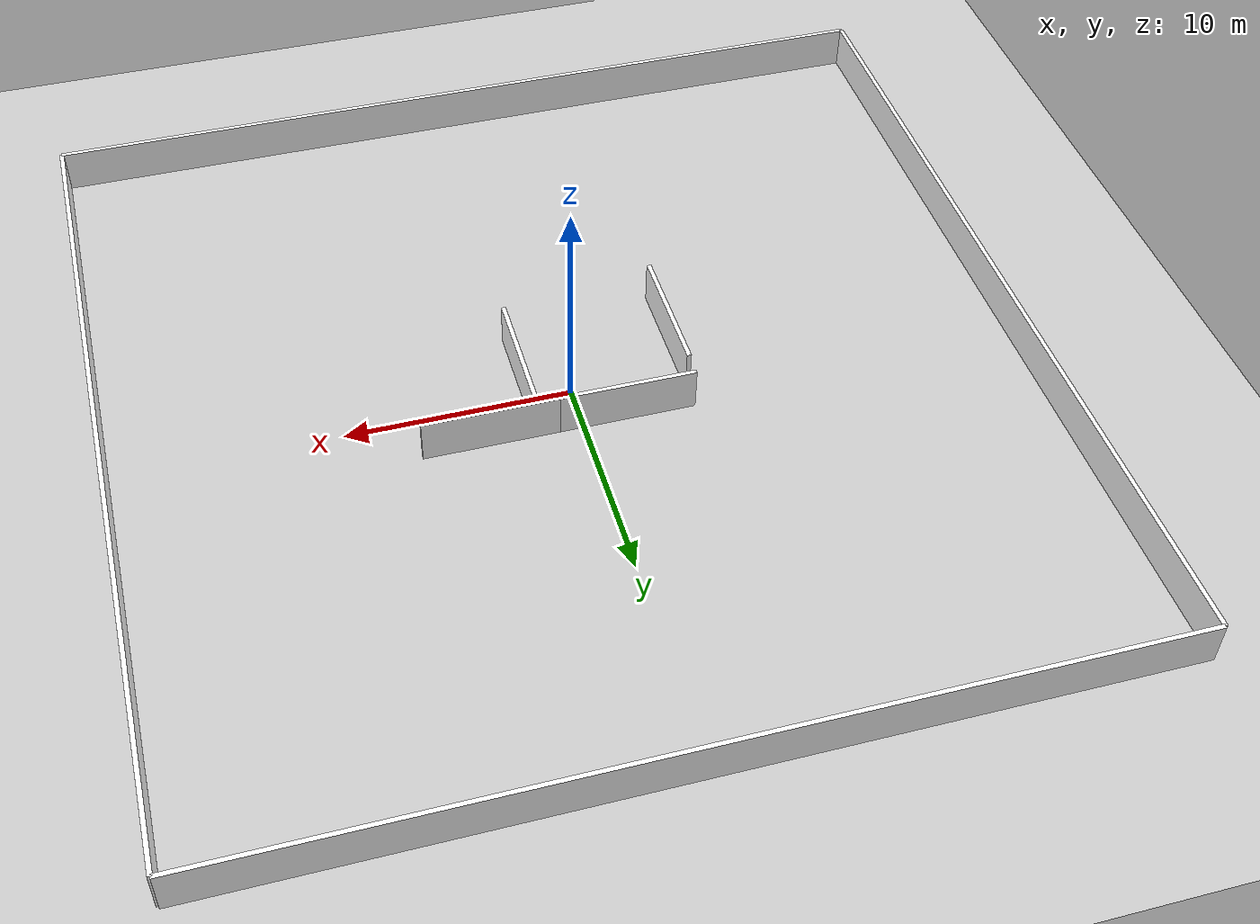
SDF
<?xml version="1.0" ?>
<sdf version="1.8">
  <world name="demo">
    <plugin filename="gz-sim-physics-system" name="gz::sim::systems::Physics"></plugin>
    <plugin filename="gz-sim-user-commands-system" name="gz::sim::systems::UserCommands"></plugin>
    <plugin filename="gz-sim-scene-broadcaster-system" name="gz::sim::systems::SceneBroadcaster"></plugin>
    <plugin filename="gz-sim-sensors-system" name="gz::sim::systems::Sensors">
      <render_engine>ogre2</render_engine>
    </plugin>
    <physics name="1ms" type="ignored">
      <max_step_size>0.001</max_step_size>
      <real_time_factor>1.0</real_time_factor>
    </physics>

    <light type="directional" name="sun">
      <cast_shadows>true</cast_shadows>
      <pose>0 0 10 0 0 0</pose>
      <diffuse>0.8 0.8 0.8 1</diffuse>
      <specular>0.2 0.2 0.2 1</specular>
      <direction>-0.5 0.1 -0.9</direction>
    </light>

    <model name="ground_plane">
      <static>true</static>
      <link name="link">
        <collision name="collision">
          <geometry><plane><normal>0 0 1</normal><size>100 100</size></plane></geometry>
        </collision>
        <visual name="visual">
          <geometry><plane><normal>0 0 1</normal><size>100 100</size></plane></geometry>
          <material>
            <ambient>0.8 0.8 0.8 1</ambient>
            <diffuse>0.8 0.8 0.8 1</diffuse>
          </material>
        </visual>
      </link>
    </model>
    <model name="wall_top">
      <static>true</static>
      <pose>0 20 1 0 0 0</pose>
      <link name="link">
        <collision name="col">
          <geometry><box><size>40 0.2 2</size></box></geometry>
        </collision>
        <visual name="vis">
          <geometry><box><size>40 0.2 2</size></box></geometry>
          <material>
            <ambient>1 1 1 1</ambient>
            <diffuse>1 1 1 1</diffuse>
          </material>
        </visual>
      </link>
    </model>

    <model name="wall_bottom">
      <static>true</static>
      <pose>0 -20 1 0 0 0</pose>
      <link name="link">
        <collision name="col">
          <geometry><box><size>40 0.2 2</size></box></geometry>
        </collision>
        <visual name="vis">
          <geometry><box><size>40 0.2 2</size></box></geometry>
          <material>
            <ambient>1 1 1 1</ambient>
            <diffuse>1 1 1 1</diffuse>
          </material>
        </visual>
      </link>
    </model>

    <model name="wall_left">
      <static>true</static>
      <pose>-20 0 1 0 0 0</pose>
      <link name="link">
        <collision name="col">
          <geometry><box><size>0.2 40 2</size></box></geometry>
        </collision>
        <visual name="vis">
          <geometry><box><size>0.2 40 2</size></box></geometry>
          <material>
            <ambient>1 1 1 1</ambient>
            <diffuse>1 1 1 1</diffuse>
          </material>
        </visual>
      </link>
    </model>

    <model name="wall_right">
      <static>true</static>
      <pose>20 0 1 0 0 0</pose>
      <link name="link">
        <collision name="col">
          <geometry><box><size>0.2 40 2</size></box></geometry>
        </collision>
        <visual name="vis">
          <geometry><box><size>0.2 40 2</size></box></geometry>
          <material>
            <ambient>1 1 1 1</ambient>
            <diffuse>1 1 1 1</diffuse>
          </material>
        </visual>
      </link>
    </model>

    <model name="maze_wall_1">
      <static>true</static>
      <pose>-2 2 1 0 0 0</pose>
      <link name="link">
        <collision name="col"><geometry><box><size>6 0.2 2</size></box></geometry></collision>
        <visual name="vis">
          <geometry><box><size>6 0.2 2</size></box></geometry>
          <material><ambient>1 1 1 1</ambient><diffuse>1 1 1 1</diffuse></material>
        </visual>
      </link>
    </model>

    <model name="maze_wall_2">
      <static>true</static>
      <pose>2 -1 1 0 0 0</pose>
      <link name="link">
        <collision name="col"><geometry><box><size>0.2 6 2</size></box></geometry></collision>
        <visual name="vis">
          <geometry><box><size>0.2 6 2</size></box></geometry>
          <material><ambient>1 1 1 1</ambient><diffuse>1 1 1 1</diffuse></material>
        </visual>
      </link>
    </model>

    <model name="maze_wall_3">
      <static>true</static>
      <pose>-5 -2 1 0 0 0</pose>
      <link name="link">
        <collision name="col"><geometry><box><size>0.2 6 2</size></box></geometry></collision>
        <visual name="vis">
          <geometry><box><size>0.2 6 2</size></box></geometry>
          <material><ambient>1 1 1 1</ambient><diffuse>1 1 1 1</diffuse></material>
        </visual>
      </link>
    </model>

    <model name="maze_wall_4">
      <static>true</static>
      <pose>4 2 1 0 0 0</pose>
      <link name="link">
        <collision name="col"><geometry><box><size>6 0.2 2</size></box></geometry></collision>
        <visual name="vis">
          <geometry><box><size>6 0.2 2</size></box></geometry>
          <material><ambient>1 1 1 1</ambient><diffuse>1 1 1 1</diffuse></material>
        </visual>
      </link>
    </model>

  </world>
</sdf>
